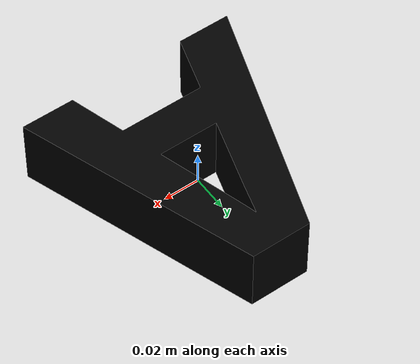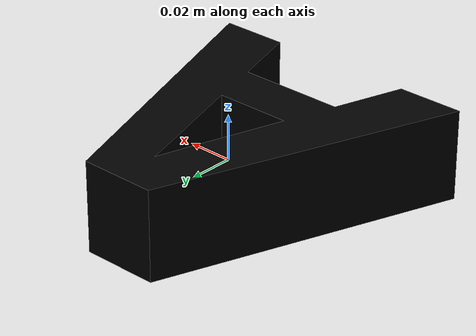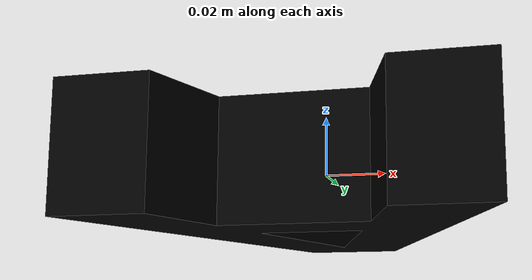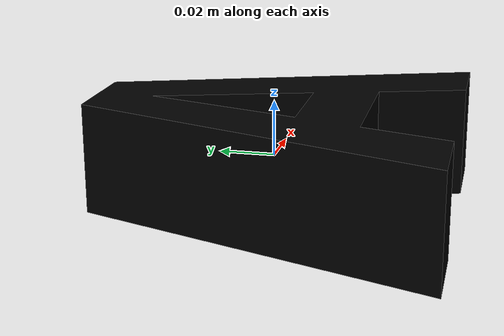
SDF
<?xml version="1.0"?>
<sdf version="1.7">
<!-- This SDF was autogenerated by controller_sdf_generation.py -->
  <model name="anything">
    <link name="smaller_a">
      <inertial>
        <pose>0 0 0 0 0 0</pose>
        <mass>1</mass>
        <inertia>
            <ixx>0.003</ixx>
            <iyy>0.003 </iyy>
            <izz>0.006 </izz>
            <ixy>0.0</ixy>
            <ixz>0.0</ixz>
            <iyz>0.0</iyz>
        </inertia>
      </inertial>
      <visual name="smaller_a">
        <pose>0 0 0 0 0 0</pose>
        <geometry>
          <mesh>
            <uri>smaller_a.obj</uri>
          </mesh>
        </geometry>
        <material>
          <diffuse>0 0 0 1</diffuse>
        </material>
      </visual>
      <collision name="smaller_a_volume">
        <pose>0 0 0 0 0 0</pose>
            <geometry>
          <mesh>
            <uri>smaller_a.obj</uri>
          </mesh>
        </geometry>
        <drake:proximity_properties>
          <drake:compliant_hydroelastic/>
          <drake:hydroelastic_modulus> 3.0e7 </drake:hydroelastic_modulus>
          <drake:mesh_resolution_hint> 0.18 </drake:mesh_resolution_hint>
          <drake:hunt_crossley_dissipation>10</drake:hunt_crossley_dissipation>
          <drake:mu_dynamic>0.3</drake:mu_dynamic>
        </drake:proximity_properties>
      </collision>
      <collision name="corner_nxynz">
        <geometry>
          <sphere>
            <radius>0.001</radius>
          </sphere>
        </geometry>
        <drake:proximity_properties>
        <drake:mu_dynamic>0.3</drake:mu_dynamic>
        </drake:proximity_properties>
        <pose> -0.06500000 0.06443580 -0.02000000 0 0 0</pose>
      </collision>
      <collision name="corner_nxnynz">
        <geometry>
          <sphere>
            <radius>0.001</radius>
          </sphere>
        </geometry>
        <drake:proximity_properties>
        <drake:mu_dynamic>0.3</drake:mu_dynamic>
        </drake:proximity_properties>
        <pose> -0.06500000 -0.06500000 -0.02000000 0 0 0</pose>
      </collision>
      <collision name="corner_xynz">
        <geometry>
          <sphere>
            <radius>0.001</radius>
          </sphere>
        </geometry>
        <drake:proximity_properties>
        <drake:mu_dynamic>0.3</drake:mu_dynamic>
        </drake:proximity_properties>
        <pose> 0.05958330 -0.00028210 -0.02000000 0 0 0</pose>
      </collision>

    </link>
  </model>
</sdf>
